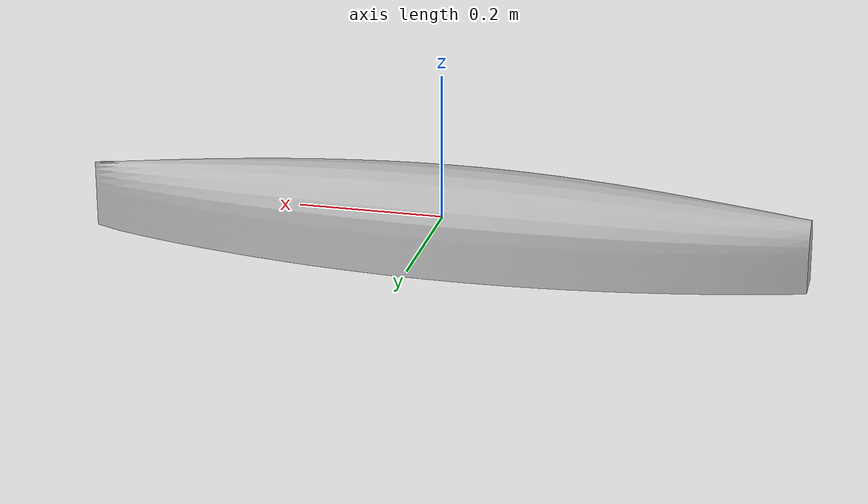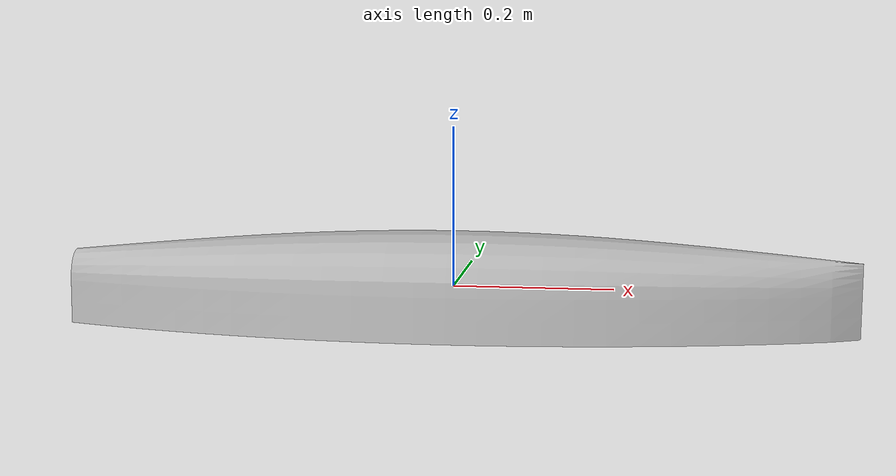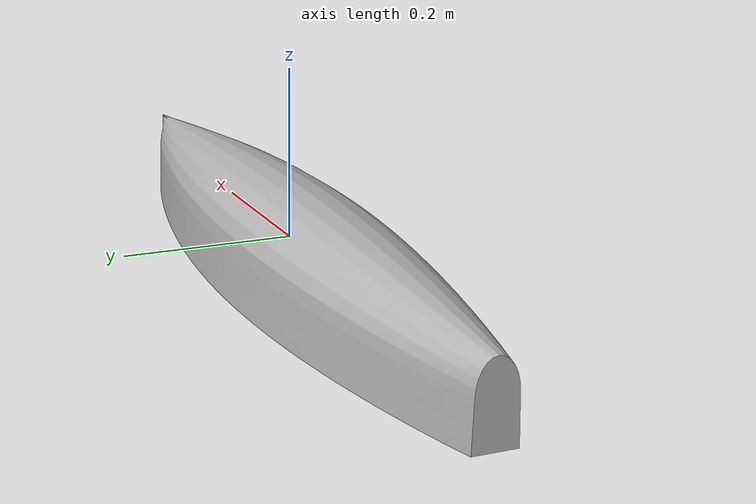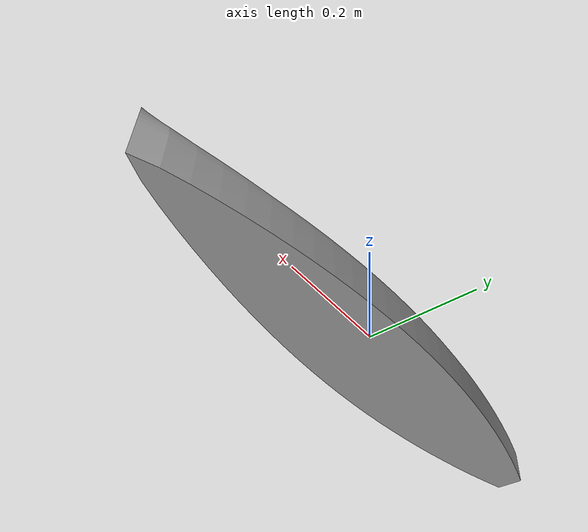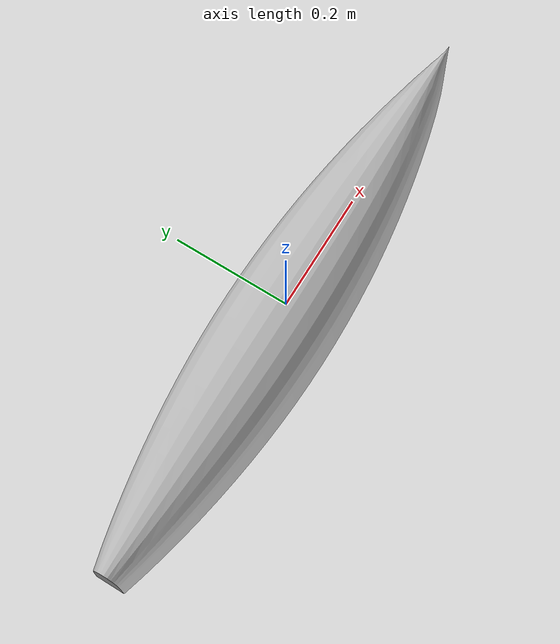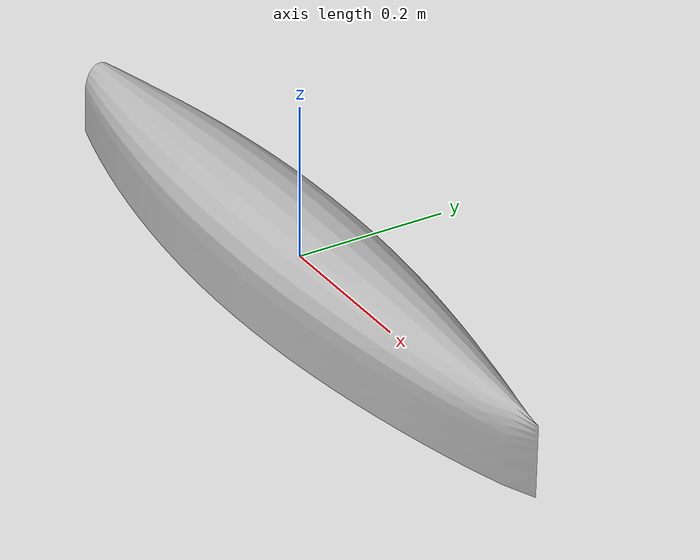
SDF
<?xml version="1.0"?>
<sdf version="1.10">
  <model name="focus_v2">
    <!-- Physics is provided by the external xdyn co-simulation (see focus_v2.yaml);
         Gazebo only carries the visual + a coarse collision box. -->
    <link name="base_link">
      <visual name="visual">
        <!-- OBJ renders in the Gazebo GUI (the Blender COLLADA loader fails
             silently in gz-common). Mesh is modelled bow on +Y to match the
             vessel advance axis in the link frame. -->
        <geometry>
          <mesh>
            <uri>model://focus_v2/meshes/focus_v2.obj</uri>
          </mesh>
        </geometry>
      </visual>

      <collision name="base_collision">
        <geometry>
          <box>
            <size>0.17 0.995 0.13</size>
          </box>
        </geometry>
      </collision>
    </link>
  </model>
</sdf>
